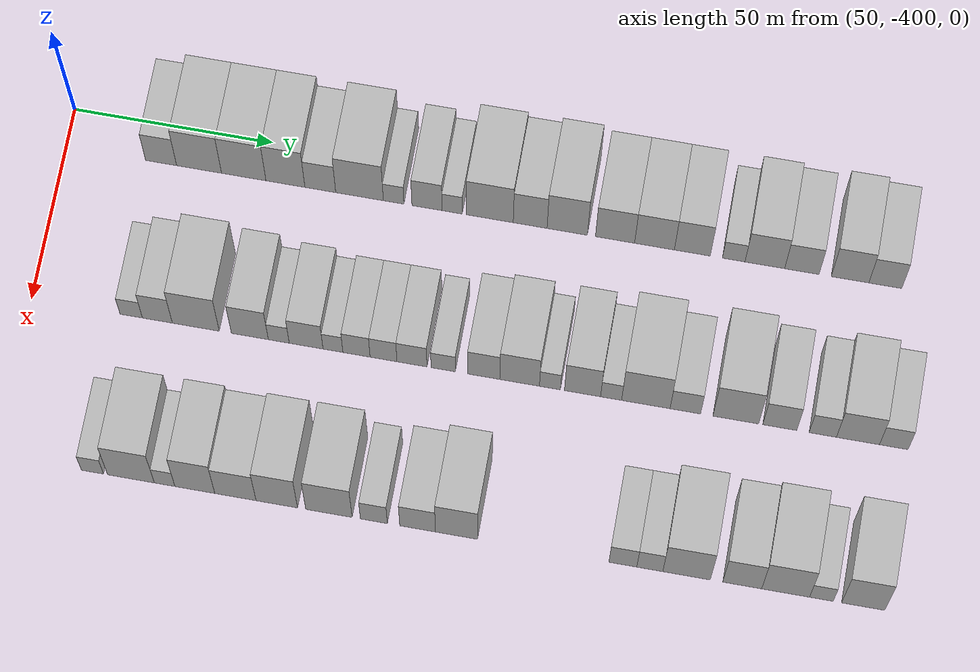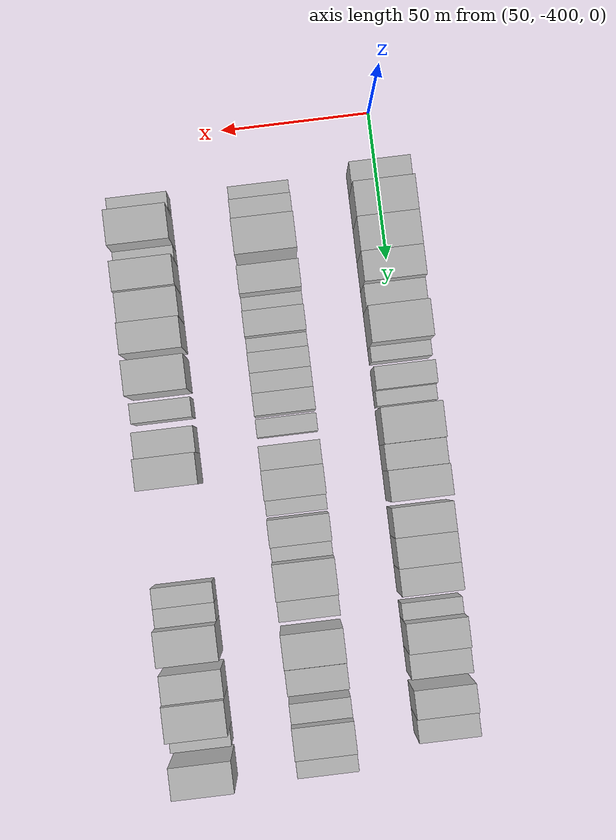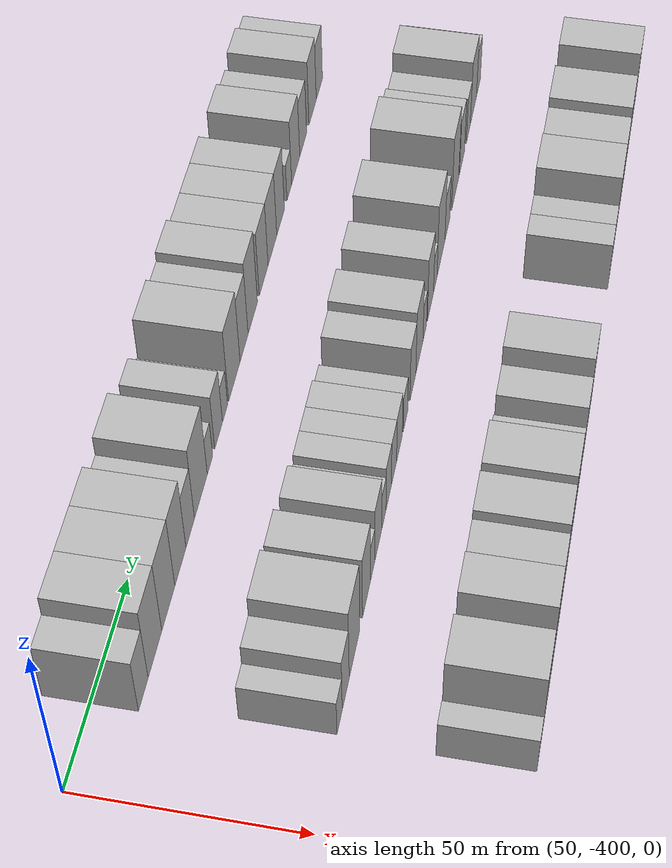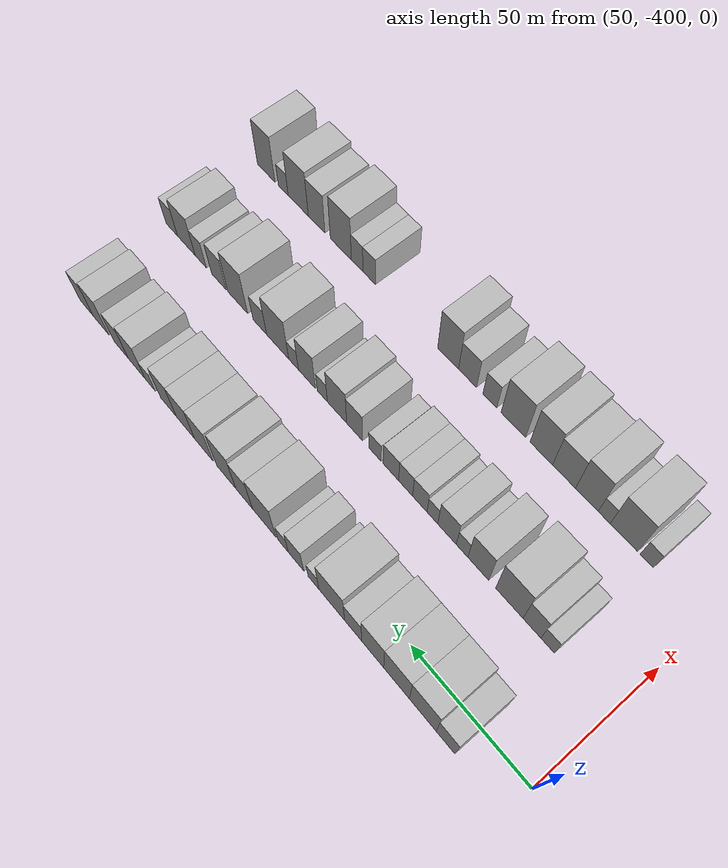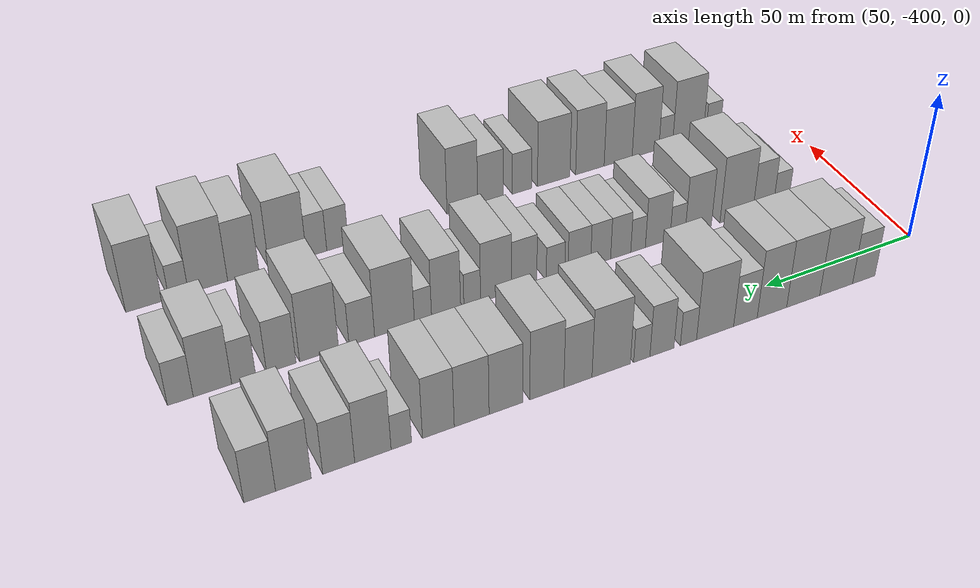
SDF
<sdf version="1.6">
 <world name="default">
  <model name="building_1">
   <static>1</static>
   <pose>50.0000 -376.1027 0 0.000000 0.000000 0.000000</pose>
   <link name="link">
    <pose>0 0 9.00 0 0 0</pose>
    <collision name="collision"><geometry><box><size>20.0000 7.7946 18.0000</size></box></geometry></collision>
    <visual name="visual">
     <cast_shadows>0</cast_shadows>
     <geometry><box><size>20.0000 7.7946 18.0000</size></box></geometry>
     <material>
      <script>
       <uri>model://HANNAS_wall/materials/scripts</uri>
       <uri>model://HANNAS_wall/materials/textures</uri>
       <name>vrc/HANNAS_wall</name>
      </script>
     </material>
    </visual>
   </link>
  </model>
  <model name="building_2">
   <static>1</static>
   <pose>50.0000 -366.5684 0 0.000000 0.000000 0.000000</pose>
   <link name="link">
    <pose>0 0 12.00 0 0 0</pose>
    <collision name="collision"><geometry><box><size>20.0000 11.2741 24.0000</size></box></geometry></collision>
    <visual name="visual">
     <cast_shadows>0</cast_shadows>
     <geometry><box><size>20.0000 11.2741 24.0000</size></box></geometry>
     <material>
      <script>
       <uri>model://HANNAS_wall/materials/scripts</uri>
       <uri>model://HANNAS_wall/materials/textures</uri>
       <name>vrc/HANNAS_wall</name>
      </script>
     </material>
    </visual>
   </link>
  </model>
  <model name="building_3">
   <static>1</static>
   <pose>50.0000 -355.3672 0 0.000000 0.000000 0.000000</pose>
   <link name="link">
    <pose>0 0 12.00 0 0 0</pose>
    <collision name="collision"><geometry><box><size>20.0000 11.1284 24.0000</size></box></geometry></collision>
    <visual name="visual">
     <cast_shadows>0</cast_shadows>
     <geometry><box><size>20.0000 11.1284 24.0000</size></box></geometry>
     <material>
      <script>
       <uri>model://HANNAS_wall/materials/scripts</uri>
       <uri>model://HANNAS_wall/materials/textures</uri>
       <name>vrc/HANNAS_wall</name>
      </script>
     </material>
    </visual>
   </link>
  </model>
  <model name="building_4">
   <static>1</static>
   <pose>50.0000 -344.9227 0 0.000000 0.000000 0.000000</pose>
   <link name="link">
    <pose>0 0 12.00 0 0 0</pose>
    <collision name="collision"><geometry><box><size>20.0000 9.7606 24.0000</size></box></geometry></collision>
    <visual name="visual">
     <cast_shadows>0</cast_shadows>
     <geometry><box><size>20.0000 9.7606 24.0000</size></box></geometry>
     <material>
      <script>
       <uri>model://HANNAS_wall/materials/scripts</uri>
       <uri>model://HANNAS_wall/materials/textures</uri>
       <name>vrc/HANNAS_wall</name>
      </script>
     </material>
    </visual>
   </link>
  </model>
  <model name="building_5">
   <static>1</static>
   <pose>50.0000 -336.1922 0 0.000000 0.000000 0.000000</pose>
   <link name="link">
    <pose>0 0 9.00 0 0 0</pose>
    <collision name="collision"><geometry><box><size>20.0000 7.7004 18.0000</size></box></geometry></collision>
    <visual name="visual">
     <cast_shadows>0</cast_shadows>
     <geometry><box><size>20.0000 7.7004 18.0000</size></box></geometry>
     <material>
      <script>
       <uri>model://HANNAS_wall/materials/scripts</uri>
       <uri>model://HANNAS_wall/materials/textures</uri>
       <name>vrc/HANNAS_wall</name>
      </script>
     </material>
    </visual>
   </link>
  </model>
  <model name="building_6">
   <static>1</static>
   <pose>50.0000 -326.3883 0 0.000000 0.000000 0.000000</pose>
   <link name="link">
    <pose>0 0 12.00 0 0 0</pose>
    <collision name="collision"><geometry><box><size>20.0000 11.9073 24.0000</size></box></geometry></collision>
    <visual name="visual">
     <cast_shadows>0</cast_shadows>
     <geometry><box><size>20.0000 11.9073 24.0000</size></box></geometry>
     <material>
      <script>
       <uri>model://HANNAS_wall/materials/scripts</uri>
       <uri>model://HANNAS_wall/materials/textures</uri>
       <name>vrc/HANNAS_wall</name>
      </script>
     </material>
    </visual>
   </link>
  </model>
  <model name="building_7">
   <static>1</static>
   <pose>50.0000 -317.8739 0 0.000000 0.000000 0.000000</pose>
   <link name="link">
    <pose>0 0 6.00 0 0 0</pose>
    <collision name="collision"><geometry><box><size>20.0000 5.1215 12.0000</size></box></geometry></collision>
    <visual name="visual">
     <cast_shadows>0</cast_shadows>
     <geometry><box><size>20.0000 5.1215 12.0000</size></box></geometry>
     <material>
      <script>
       <uri>model://HANNAS_wall/materials/scripts</uri>
       <uri>model://HANNAS_wall/materials/textures</uri>
       <name>vrc/HANNAS_wall</name>
      </script>
     </material>
    </visual>
   </link>
  </model>
  <model name="building_8">
   <static>1</static>
   <pose>50.0000 -309.5573 0 0.000000 0.000000 0.000000</pose>
   <link name="link">
    <pose>0 0 9.00 0 0 0</pose>
    <collision name="collision"><geometry><box><size>20.0000 7.5115 18.0000</size></box></geometry></collision>
    <visual name="visual">
     <cast_shadows>0</cast_shadows>
     <geometry><box><size>20.0000 7.5115 18.0000</size></box></geometry>
     <material>
      <script>
       <uri>model://HANNAS_wall/materials/scripts</uri>
       <uri>model://HANNAS_wall/materials/textures</uri>
       <name>vrc/HANNAS_wall</name>
      </script>
     </material>
    </visual>
   </link>
  </model>
  <model name="building_9">
   <static>1</static>
   <pose>50.0000 -303.2889 0 0.000000 0.000000 0.000000</pose>
   <link name="link">
    <pose>0 0 6.00 0 0 0</pose>
    <collision name="collision"><geometry><box><size>20.0000 5.0254 12.0000</size></box></geometry></collision>
    <visual name="visual">
     <cast_shadows>0</cast_shadows>
     <geometry><box><size>20.0000 5.0254 12.0000</size></box></geometry>
     <material>
      <script>
       <uri>model://HANNAS_wall/materials/scripts</uri>
       <uri>model://HANNAS_wall/materials/textures</uri>
       <name>vrc/HANNAS_wall</name>
      </script>
     </material>
    </visual>
   </link>
  </model>
  <model name="building_10">
   <static>1</static>
   <pose>50.0000 -293.9382 0 0.000000 0.000000 0.000000</pose>
   <link name="link">
    <pose>0 0 12.00 0 0 0</pose>
    <collision name="collision"><geometry><box><size>20.0000 11.6762 24.0000</size></box></geometry></collision>
    <visual name="visual">
     <cast_shadows>0</cast_shadows>
     <geometry><box><size>20.0000 11.6762 24.0000</size></box></geometry>
     <material>
      <script>
       <uri>model://HANNAS_wall/materials/scripts</uri>
       <uri>model://HANNAS_wall/materials/textures</uri>
       <name>vrc/HANNAS_wall</name>
      </script>
     </material>
    </visual>
   </link>
  </model>
  <model name="building_11">
   <static>1</static>
   <pose>50.0000 -283.8956 0 0.000000 0.000000 0.000000</pose>
   <link name="link">
    <pose>0 0 10.50 0 0 0</pose>
    <collision name="collision"><geometry><box><size>20.0000 8.4090 21.0000</size></box></geometry></collision>
    <visual name="visual">
     <cast_shadows>0</cast_shadows>
     <geometry><box><size>20.0000 8.4090 21.0000</size></box></geometry>
     <material>
      <script>
       <uri>model://HANNAS_wall/materials/scripts</uri>
       <uri>model://HANNAS_wall/materials/textures</uri>
       <name>vrc/HANNAS_wall</name>
      </script>
     </material>
    </visual>
   </link>
  </model>
  <model name="building_12">
   <static>1</static>
   <pose>50.0000 -274.6847 0 0.000000 0.000000 0.000000</pose>
   <link name="link">
    <pose>0 0 12.00 0 0 0</pose>
    <collision name="collision"><geometry><box><size>20.0000 10.0127 24.0000</size></box></geometry></collision>
    <visual name="visual">
     <cast_shadows>0</cast_shadows>
     <geometry><box><size>20.0000 10.0127 24.0000</size></box></geometry>
     <material>
      <script>
       <uri>model://HANNAS_wall/materials/scripts</uri>
       <uri>model://HANNAS_wall/materials/textures</uri>
       <name>vrc/HANNAS_wall</name>
      </script>
     </material>
    </visual>
   </link>
  </model>
  <model name="building_13">
   <static>1</static>
   <pose>50.0000 -262.8253 0 0.000000 0.000000 0.000000</pose>
   <link name="link">
    <pose>0 0 10.50 0 0 0</pose>
    <collision name="collision"><geometry><box><size>20.0000 9.7060 21.0000</size></box></geometry></collision>
    <visual name="visual">
     <cast_shadows>0</cast_shadows>
     <geometry><box><size>20.0000 9.7060 21.0000</size></box></geometry>
     <material>
      <script>
       <uri>model://HANNAS_wall/materials/scripts</uri>
       <uri>model://HANNAS_wall/materials/textures</uri>
       <name>vrc/HANNAS_wall</name>
      </script>
     </material>
    </visual>
   </link>
  </model>
  <model name="building_14">
   <static>1</static>
   <pose>50.0000 -253.0473 0 0.000000 0.000000 0.000000</pose>
   <link name="link">
    <pose>0 0 10.50 0 0 0</pose>
    <collision name="collision"><geometry><box><size>20.0000 9.8501 21.0000</size></box></geometry></collision>
    <visual name="visual">
     <cast_shadows>0</cast_shadows>
     <geometry><box><size>20.0000 9.8501 21.0000</size></box></geometry>
     <material>
      <script>
       <uri>model://HANNAS_wall/materials/scripts</uri>
       <uri>model://HANNAS_wall/materials/textures</uri>
       <name>vrc/HANNAS_wall</name>
      </script>
     </material>
    </visual>
   </link>
  </model>
  <model name="building_15">
   <static>1</static>
   <pose>50.0000 -243.6932 0 0.000000 0.000000 0.000000</pose>
   <link name="link">
    <pose>0 0 10.50 0 0 0</pose>
    <collision name="collision"><geometry><box><size>20.0000 8.8581 21.0000</size></box></geometry></collision>
    <visual name="visual">
     <cast_shadows>0</cast_shadows>
     <geometry><box><size>20.0000 8.8581 21.0000</size></box></geometry>
     <material>
      <script>
       <uri>model://HANNAS_wall/materials/scripts</uri>
       <uri>model://HANNAS_wall/materials/textures</uri>
       <name>vrc/HANNAS_wall</name>
      </script>
     </material>
    </visual>
   </link>
  </model>
  <model name="building_16">
   <static>1</static>
   <pose>50.0000 -233.4718 0 0.000000 0.000000 0.000000</pose>
   <link name="link">
    <pose>0 0 6.00 0 0 0</pose>
    <collision name="collision"><geometry><box><size>20.0000 5.5846 12.0000</size></box></geometry></collision>
    <visual name="visual">
     <cast_shadows>0</cast_shadows>
     <geometry><box><size>20.0000 5.5846 12.0000</size></box></geometry>
     <material>
      <script>
       <uri>model://HANNAS_wall/materials/scripts</uri>
       <uri>model://HANNAS_wall/materials/textures</uri>
       <name>vrc/HANNAS_wall</name>
      </script>
     </material>
    </visual>
   </link>
  </model>
  <model name="building_17">
   <static>1</static>
   <pose>50.0000 -225.7855 0 0.000000 0.000000 0.000000</pose>
   <link name="link">
    <pose>0 0 10.50 0 0 0</pose>
    <collision name="collision"><geometry><box><size>20.0000 9.7880 21.0000</size></box></geometry></collision>
    <visual name="visual">
     <cast_shadows>0</cast_shadows>
     <geometry><box><size>20.0000 9.7880 21.0000</size></box></geometry>
     <material>
      <script>
       <uri>model://HANNAS_wall/materials/scripts</uri>
       <uri>model://HANNAS_wall/materials/textures</uri>
       <name>vrc/HANNAS_wall</name>
      </script>
     </material>
    </visual>
   </link>
  </model>
  <model name="building_18">
   <static>1</static>
   <pose>50.0000 -216.6525 0 0.000000 0.000000 0.000000</pose>
   <link name="link">
    <pose>0 0 9.00 0 0 0</pose>
    <collision name="collision"><geometry><box><size>20.0000 8.4779 18.0000</size></box></geometry></collision>
    <visual name="visual">
     <cast_shadows>0</cast_shadows>
     <geometry><box><size>20.0000 8.4779 18.0000</size></box></geometry>
     <material>
      <script>
       <uri>model://HANNAS_wall/materials/scripts</uri>
       <uri>model://HANNAS_wall/materials/textures</uri>
       <name>vrc/HANNAS_wall</name>
      </script>
     </material>
    </visual>
   </link>
  </model>
  <model name="building_19">
   <static>1</static>
   <pose>50.0000 -204.7900 0 0.000000 0.000000 0.000000</pose>
   <link name="link">
    <pose>0 0 10.50 0 0 0</pose>
    <collision name="collision"><geometry><box><size>20.0000 9.2471 21.0000</size></box></geometry></collision>
    <visual name="visual">
     <cast_shadows>0</cast_shadows>
     <geometry><box><size>20.0000 9.2471 21.0000</size></box></geometry>
     <material>
      <script>
       <uri>model://HANNAS_wall/materials/scripts</uri>
       <uri>model://HANNAS_wall/materials/textures</uri>
       <name>vrc/HANNAS_wall</name>
      </script>
     </material>
    </visual>
   </link>
  </model>
  <model name="building_20">
   <static>1</static>
   <pose>50.0000 -196.1114 0 0.000000 0.000000 0.000000</pose>
   <link name="link">
    <pose>0 0 9.00 0 0 0</pose>
    <collision name="collision"><geometry><box><size>20.0000 8.1101 18.0000</size></box></geometry></collision>
    <visual name="visual">
     <cast_shadows>0</cast_shadows>
     <geometry><box><size>20.0000 8.1101 18.0000</size></box></geometry>
     <material>
      <script>
       <uri>model://HANNAS_wall/materials/scripts</uri>
       <uri>model://HANNAS_wall/materials/textures</uri>
       <name>vrc/HANNAS_wall</name>
      </script>
     </material>
    </visual>
   </link>
  </model>
  <model name="building_80">
   <static>1</static>
   <pose>90.0000 -375.2246 0 0.000000 0.000000 0.000000</pose>
   <link name="link">
    <pose>0 0 6.00 0 0 0</pose>
    <collision name="collision"><geometry><box><size>20.0000 5.5507 12.0000</size></box></geometry></collision>
    <visual name="visual">
     <cast_shadows>0</cast_shadows>
     <geometry><box><size>20.0000 5.5507 12.0000</size></box></geometry>
     <material>
      <script>
       <uri>model://HANNAS_wall/materials/scripts</uri>
       <uri>model://HANNAS_wall/materials/textures</uri>
       <name>vrc/HANNAS_wall</name>
      </script>
     </material>
    </visual>
   </link>
  </model>
  <model name="building_81">
   <static>1</static>
   <pose>90.0000 -368.7449 0 0.000000 0.000000 0.000000</pose>
   <link name="link">
    <pose>0 0 9.00 0 0 0</pose>
    <collision name="collision"><geometry><box><size>20.0000 7.4088 18.0000</size></box></geometry></collision>
    <visual name="visual">
     <cast_shadows>0</cast_shadows>
     <geometry><box><size>20.0000 7.4088 18.0000</size></box></geometry>
     <material>
      <script>
       <uri>model://HANNAS_wall/materials/scripts</uri>
       <uri>model://HANNAS_wall/materials/textures</uri>
       <name>vrc/HANNAS_wall</name>
      </script>
     </material>
    </visual>
   </link>
  </model>
  <model name="building_82">
   <static>1</static>
   <pose>90.0000 -359.2306 0 0.000000 0.000000 0.000000</pose>
   <link name="link">
    <pose>0 0 12.00 0 0 0</pose>
    <collision name="collision"><geometry><box><size>20.0000 11.6198 24.0000</size></box></geometry></collision>
    <visual name="visual">
     <cast_shadows>0</cast_shadows>
     <geometry><box><size>20.0000 11.6198 24.0000</size></box></geometry>
     <material>
      <script>
       <uri>model://HANNAS_wall/materials/scripts</uri>
       <uri>model://HANNAS_wall/materials/textures</uri>
       <name>vrc/HANNAS_wall</name>
      </script>
     </material>
    </visual>
   </link>
  </model>
  <model name="building_83">
   <static>1</static>
   <pose>90.0000 -345.8639 0 0.000000 0.000000 0.000000</pose>
   <link name="link">
    <pose>0 0 10.50 0 0 0</pose>
    <collision name="collision"><geometry><box><size>20.0000 9.1135 21.0000</size></box></geometry></collision>
    <visual name="visual">
     <cast_shadows>0</cast_shadows>
     <geometry><box><size>20.0000 9.1135 21.0000</size></box></geometry>
     <material>
      <script>
       <uri>model://HANNAS_wall/materials/scripts</uri>
       <uri>model://HANNAS_wall/materials/textures</uri>
       <name>vrc/HANNAS_wall</name>
      </script>
     </material>
    </visual>
   </link>
  </model>
  <model name="building_84">
   <static>1</static>
   <pose>90.0000 -338.7263 0 0.000000 0.000000 0.000000</pose>
   <link name="link">
    <pose>0 0 6.00 0 0 0</pose>
    <collision name="collision"><geometry><box><size>20.0000 5.1617 12.0000</size></box></geometry></collision>
    <visual name="visual">
     <cast_shadows>0</cast_shadows>
     <geometry><box><size>20.0000 5.1617 12.0000</size></box></geometry>
     <material>
      <script>
       <uri>model://HANNAS_wall/materials/scripts</uri>
       <uri>model://HANNAS_wall/materials/textures</uri>
       <name>vrc/HANNAS_wall</name>
      </script>
     </material>
    </visual>
   </link>
  </model>
  <model name="building_85">
   <static>1</static>
   <pose>90.0000 -331.9749 0 0.000000 0.000000 0.000000</pose>
   <link name="link">
    <pose>0 0 9.00 0 0 0</pose>
    <collision name="collision"><geometry><box><size>20.0000 8.3412 18.0000</size></box></geometry></collision>
    <visual name="visual">
     <cast_shadows>0</cast_shadows>
     <geometry><box><size>20.0000 8.3412 18.0000</size></box></geometry>
     <material>
      <script>
       <uri>model://HANNAS_wall/materials/scripts</uri>
       <uri>model://HANNAS_wall/materials/textures</uri>
       <name>vrc/HANNAS_wall</name>
      </script>
     </material>
    </visual>
   </link>
  </model>
  <model name="building_86">
   <static>1</static>
   <pose>90.0000 -325.3547 0 0.000000 0.000000 0.000000</pose>
   <link name="link">
    <pose>0 0 6.00 0 0 0</pose>
    <collision name="collision"><geometry><box><size>20.0000 4.8990 12.0000</size></box></geometry></collision>
    <visual name="visual">
     <cast_shadows>0</cast_shadows>
     <geometry><box><size>20.0000 4.8990 12.0000</size></box></geometry>
     <material>
      <script>
       <uri>model://HANNAS_wall/materials/scripts</uri>
       <uri>model://HANNAS_wall/materials/textures</uri>
       <name>vrc/HANNAS_wall</name>
      </script>
     </material>
    </visual>
   </link>
  </model>
  <model name="building_87">
   <static>1</static>
   <pose>90.0000 -319.5586 0 0.000000 0.000000 0.000000</pose>
   <link name="link">
    <pose>0 0 7.50 0 0 0</pose>
    <collision name="collision"><geometry><box><size>20.0000 6.6933 15.0000</size></box></geometry></collision>
    <visual name="visual">
     <cast_shadows>0</cast_shadows>
     <geometry><box><size>20.0000 6.6933 15.0000</size></box></geometry>
     <material>
      <script>
       <uri>model://HANNAS_wall/materials/scripts</uri>
       <uri>model://HANNAS_wall/materials/textures</uri>
       <name>vrc/HANNAS_wall</name>
      </script>
     </material>
    </visual>
   </link>
  </model>
  <model name="building_88">
   <static>1</static>
   <pose>90.0000 -312.9113 0 0.000000 0.000000 0.000000</pose>
   <link name="link">
    <pose>0 0 7.50 0 0 0</pose>
    <collision name="collision"><geometry><box><size>20.0000 6.6013 15.0000</size></box></geometry></collision>
    <visual name="visual">
     <cast_shadows>0</cast_shadows>
     <geometry><box><size>20.0000 6.6013 15.0000</size></box></geometry>
     <material>
      <script>
       <uri>model://HANNAS_wall/materials/scripts</uri>
       <uri>model://HANNAS_wall/materials/textures</uri>
       <name>vrc/HANNAS_wall</name>
      </script>
     </material>
    </visual>
   </link>
  </model>
  <model name="building_89">
   <static>1</static>
   <pose>90.0000 -305.9190 0 0.000000 0.000000 0.000000</pose>
   <link name="link">
    <pose>0 0 7.50 0 0 0</pose>
    <collision name="collision"><geometry><box><size>20.0000 7.3832 15.0000</size></box></geometry></collision>
    <visual name="visual">
     <cast_shadows>0</cast_shadows>
     <geometry><box><size>20.0000 7.3832 15.0000</size></box></geometry>
     <material>
      <script>
       <uri>model://HANNAS_wall/materials/scripts</uri>
       <uri>model://HANNAS_wall/materials/textures</uri>
       <name>vrc/HANNAS_wall</name>
      </script>
     </material>
    </visual>
   </link>
  </model>
  <model name="building_90">
   <static>1</static>
   <pose>90.0000 -298.2472 0 0.000000 0.000000 0.000000</pose>
   <link name="link">
    <pose>0 0 6.00 0 0 0</pose>
    <collision name="collision"><geometry><box><size>20.0000 5.9604 12.0000</size></box></geometry></collision>
    <visual name="visual">
     <cast_shadows>0</cast_shadows>
     <geometry><box><size>20.0000 5.9604 12.0000</size></box></geometry>
     <material>
      <script>
       <uri>model://HANNAS_wall/materials/scripts</uri>
       <uri>model://HANNAS_wall/materials/textures</uri>
       <name>vrc/HANNAS_wall</name>
      </script>
     </material>
    </visual>
   </link>
  </model>
  <model name="building_91">
   <static>1</static>
   <pose>90.0000 -288.3225 0 0.000000 0.000000 0.000000</pose>
   <link name="link">
    <pose>0 0 9.00 0 0 0</pose>
    <collision name="collision"><geometry><box><size>20.0000 7.8890 18.0000</size></box></geometry></collision>
    <visual name="visual">
     <cast_shadows>0</cast_shadows>
     <geometry><box><size>20.0000 7.8890 18.0000</size></box></geometry>
     <material>
      <script>
       <uri>model://HANNAS_wall/materials/scripts</uri>
       <uri>model://HANNAS_wall/materials/textures</uri>
       <name>vrc/HANNAS_wall</name>
      </script>
     </material>
    </visual>
   </link>
  </model>
  <model name="building_92">
   <static>1</static>
   <pose>90.0000 -279.5224 0 0.000000 0.000000 0.000000</pose>
   <link name="link">
    <pose>0 0 10.50 0 0 0</pose>
    <collision name="collision"><geometry><box><size>20.0000 9.7112 21.0000</size></box></geometry></collision>
    <visual name="visual">
     <cast_shadows>0</cast_shadows>
     <geometry><box><size>20.0000 9.7112 21.0000</size></box></geometry>
     <material>
      <script>
       <uri>model://HANNAS_wall/materials/scripts</uri>
       <uri>model://HANNAS_wall/materials/textures</uri>
       <name>vrc/HANNAS_wall</name>
      </script>
     </material>
    </visual>
   </link>
  </model>
  <model name="building_93">
   <static>1</static>
   <pose>90.0000 -272.1001 0 0.000000 0.000000 0.000000</pose>
   <link name="link">
    <pose>0 0 6.00 0 0 0</pose>
    <collision name="collision"><geometry><box><size>20.0000 5.1333 12.0000</size></box></geometry></collision>
    <visual name="visual">
     <cast_shadows>0</cast_shadows>
     <geometry><box><size>20.0000 5.1333 12.0000</size></box></geometry>
     <material>
      <script>
       <uri>model://HANNAS_wall/materials/scripts</uri>
       <uri>model://HANNAS_wall/materials/textures</uri>
       <name>vrc/HANNAS_wall</name>
      </script>
     </material>
    </visual>
   </link>
  </model>
  <model name="building_94">
   <static>1</static>
   <pose>90.0000 -264.1201 0 0.000000 0.000000 0.000000</pose>
   <link name="link">
    <pose>0 0 10.50 0 0 0</pose>
    <collision name="collision"><geometry><box><size>20.0000 8.8268 21.0000</size></box></geometry></collision>
    <visual name="visual">
     <cast_shadows>0</cast_shadows>
     <geometry><box><size>20.0000 8.8268 21.0000</size></box></geometry>
     <material>
      <script>
       <uri>model://HANNAS_wall/materials/scripts</uri>
       <uri>model://HANNAS_wall/materials/textures</uri>
       <name>vrc/HANNAS_wall</name>
      </script>
     </material>
    </visual>
   </link>
  </model>
  <model name="building_95">
   <static>1</static>
   <pose>90.0000 -257.1344 0 0.000000 0.000000 0.000000</pose>
   <link name="link">
    <pose>0 0 6.00 0 0 0</pose>
    <collision name="collision"><geometry><box><size>20.0000 5.1446 12.0000</size></box></geometry></collision>
    <visual name="visual">
     <cast_shadows>0</cast_shadows>
     <geometry><box><size>20.0000 5.1446 12.0000</size></box></geometry>
     <material>
      <script>
       <uri>model://HANNAS_wall/materials/scripts</uri>
       <uri>model://HANNAS_wall/materials/textures</uri>
       <name>vrc/HANNAS_wall</name>
      </script>
     </material>
    </visual>
   </link>
  </model>
  <model name="building_96">
   <static>1</static>
   <pose>90.0000 -248.6528 0 0.000000 0.000000 0.000000</pose>
   <link name="link">
    <pose>0 0 12.00 0 0 0</pose>
    <collision name="collision"><geometry><box><size>20.0000 11.8187 24.0000</size></box></geometry></collision>
    <visual name="visual">
     <cast_shadows>0</cast_shadows>
     <geometry><box><size>20.0000 11.8187 24.0000</size></box></geometry>
     <material>
      <script>
       <uri>model://HANNAS_wall/materials/scripts</uri>
       <uri>model://HANNAS_wall/materials/textures</uri>
       <name>vrc/HANNAS_wall</name>
      </script>
     </material>
    </visual>
   </link>
  </model>
  <model name="building_97">
   <static>1</static>
   <pose>90.0000 -239.0171 0 0.000000 0.000000 0.000000</pose>
   <link name="link">
    <pose>0 0 7.50 0 0 0</pose>
    <collision name="collision"><geometry><box><size>20.0000 7.4526 15.0000</size></box></geometry></collision>
    <visual name="visual">
     <cast_shadows>0</cast_shadows>
     <geometry><box><size>20.0000 7.4526 15.0000</size></box></geometry>
     <material>
      <script>
       <uri>model://HANNAS_wall/materials/scripts</uri>
       <uri>model://HANNAS_wall/materials/textures</uri>
       <name>vrc/HANNAS_wall</name>
      </script>
     </material>
    </visual>
   </link>
  </model>
  <model name="building_98">
   <static>1</static>
   <pose>90.0000 -226.7217 0 0.000000 0.000000 0.000000</pose>
   <link name="link">
    <pose>0 0 12.00 0 0 0</pose>
    <collision name="collision"><geometry><box><size>20.0000 11.1382 24.0000</size></box></geometry></collision>
    <visual name="visual">
     <cast_shadows>0</cast_shadows>
     <geometry><box><size>20.0000 11.1382 24.0000</size></box></geometry>
     <material>
      <script>
       <uri>model://HANNAS_wall/materials/scripts</uri>
       <uri>model://HANNAS_wall/materials/textures</uri>
       <name>vrc/HANNAS_wall</name>
      </script>
     </material>
    </visual>
   </link>
  </model>
  <model name="building_99">
   <static>1</static>
   <pose>90.0000 -216.0159 0 0.000000 0.000000 0.000000</pose>
   <link name="link">
    <pose>0 0 9.00 0 0 0</pose>
    <collision name="collision"><geometry><box><size>20.0000 8.2735 18.0000</size></box></geometry></collision>
    <visual name="visual">
     <cast_shadows>0</cast_shadows>
     <geometry><box><size>20.0000 8.2735 18.0000</size></box></geometry>
     <material>
      <script>
       <uri>model://HANNAS_wall/materials/scripts</uri>
       <uri>model://HANNAS_wall/materials/textures</uri>
       <name>vrc/HANNAS_wall</name>
      </script>
     </material>
    </visual>
   </link>
  </model>
  <model name="building_100">
   <static>1</static>
   <pose>90.0000 -205.5693 0 0.000000 0.000000 0.000000</pose>
   <link name="link">
    <pose>0 0 7.50 0 0 0</pose>
    <collision name="collision"><geometry><box><size>20.0000 6.6197 15.0000</size></box></geometry></collision>
    <visual name="visual">
     <cast_shadows>0</cast_shadows>
     <geometry><box><size>20.0000 6.6197 15.0000</size></box></geometry>
     <material>
      <script>
       <uri>model://HANNAS_wall/materials/scripts</uri>
       <uri>model://HANNAS_wall/materials/textures</uri>
       <name>vrc/HANNAS_wall</name>
      </script>
     </material>
    </visual>
   </link>
  </model>
  <model name="building_101">
   <static>1</static>
   <pose>90.0000 -197.0419 0 0.000000 0.000000 0.000000</pose>
   <link name="link">
    <pose>0 0 10.50 0 0 0</pose>
    <collision name="collision"><geometry><box><size>20.0000 10.4352 21.0000</size></box></geometry></collision>
    <visual name="visual">
     <cast_shadows>0</cast_shadows>
     <geometry><box><size>20.0000 10.4352 21.0000</size></box></geometry>
     <material>
      <script>
       <uri>model://HANNAS_wall/materials/scripts</uri>
       <uri>model://HANNAS_wall/materials/textures</uri>
       <name>vrc/HANNAS_wall</name>
      </script>
     </material>
    </visual>
   </link>
  </model>
  <model name="building_102">
   <static>1</static>
   <pose>90.0000 -188.3653 0 0.000000 0.000000 0.000000</pose>
   <link name="link">
    <pose>0 0 7.50 0 0 0</pose>
    <collision name="collision"><geometry><box><size>20.0000 6.9178 15.0000</size></box></geometry></collision>
    <visual name="visual">
     <cast_shadows>0</cast_shadows>
     <geometry><box><size>20.0000 6.9178 15.0000</size></box></geometry>
     <material>
      <script>
       <uri>model://HANNAS_wall/materials/scripts</uri>
       <uri>model://HANNAS_wall/materials/textures</uri>
       <name>vrc/HANNAS_wall</name>
      </script>
     </material>
    </visual>
   </link>
  </model>
  <model name="building_164">
   <static>1</static>
   <pose>130.0000 -376.2941 0 0.000000 0.000000 0.000000</pose>
   <link name="link">
    <pose>0 0 6.00 0 0 0</pose>
    <collision name="collision"><geometry><box><size>20.0000 5.4118 12.0000</size></box></geometry></collision>
    <visual name="visual">
     <cast_shadows>0</cast_shadows>
     <geometry><box><size>20.0000 5.4118 12.0000</size></box></geometry>
     <material>
      <script>
       <uri>model://HANNAS_wall/materials/scripts</uri>
       <uri>model://HANNAS_wall/materials/textures</uri>
       <name>vrc/HANNAS_wall</name>
      </script>
     </material>
    </visual>
   </link>
  </model>
  <model name="building_165">
   <static>1</static>
   <pose>130.0000 -366.8933 0 0.000000 0.000000 0.000000</pose>
   <link name="link">
    <pose>0 0 12.00 0 0 0</pose>
    <collision name="collision"><geometry><box><size>20.0000 11.3898 24.0000</size></box></geometry></collision>
    <visual name="visual">
     <cast_shadows>0</cast_shadows>
     <geometry><box><size>20.0000 11.3898 24.0000</size></box></geometry>
     <material>
      <script>
       <uri>model://HANNAS_wall/materials/scripts</uri>
       <uri>model://HANNAS_wall/materials/textures</uri>
       <name>vrc/HANNAS_wall</name>
      </script>
     </material>
    </visual>
   </link>
  </model>
  <model name="building_166">
   <static>1</static>
   <pose>130.0000 -358.6763 0 0.000000 0.000000 0.000000</pose>
   <link name="link">
    <pose>0 0 6.00 0 0 0</pose>
    <collision name="collision"><geometry><box><size>20.0000 5.0442 12.0000</size></box></geometry></collision>
    <visual name="visual">
     <cast_shadows>0</cast_shadows>
     <geometry><box><size>20.0000 5.0442 12.0000</size></box></geometry>
     <material>
      <script>
       <uri>model://HANNAS_wall/materials/scripts</uri>
       <uri>model://HANNAS_wall/materials/textures</uri>
       <name>vrc/HANNAS_wall</name>
      </script>
     </material>
    </visual>
   </link>
  </model>
  <model name="building_167">
   <static>1</static>
   <pose>130.0000 -351.2935 0 0.000000 0.000000 0.000000</pose>
   <link name="link">
    <pose>0 0 12.00 0 0 0</pose>
    <collision name="collision"><geometry><box><size>20.0000 9.7214 24.0000</size></box></geometry></collision>
    <visual name="visual">
     <cast_shadows>0</cast_shadows>
     <geometry><box><size>20.0000 9.7214 24.0000</size></box></geometry>
     <material>
      <script>
       <uri>model://HANNAS_wall/materials/scripts</uri>
       <uri>model://HANNAS_wall/materials/textures</uri>
       <name>vrc/HANNAS_wall</name>
      </script>
     </material>
    </visual>
   </link>
  </model>
  <model name="building_168">
   <static>1</static>
   <pose>130.0000 -341.4077 0 0.000000 0.000000 0.000000</pose>
   <link name="link">
    <pose>0 0 10.50 0 0 0</pose>
    <collision name="collision"><geometry><box><size>20.0000 10.0502 21.0000</size></box></geometry></collision>
    <visual name="visual">
     <cast_shadows>0</cast_shadows>
     <geometry><box><size>20.0000 10.0502 21.0000</size></box></geometry>
     <material>
      <script>
       <uri>model://HANNAS_wall/materials/scripts</uri>
       <uri>model://HANNAS_wall/materials/textures</uri>
       <name>vrc/HANNAS_wall</name>
      </script>
     </material>
    </visual>
   </link>
  </model>
  <model name="building_169">
   <static>1</static>
   <pose>130.0000 -331.3375 0 0.000000 0.000000 0.000000</pose>
   <link name="link">
    <pose>0 0 12.00 0 0 0</pose>
    <collision name="collision"><geometry><box><size>20.0000 10.0901 24.0000</size></box></geometry></collision>
    <visual name="visual">
     <cast_shadows>0</cast_shadows>
     <geometry><box><size>20.0000 10.0901 24.0000</size></box></geometry>
     <material>
      <script>
       <uri>model://HANNAS_wall/materials/scripts</uri>
       <uri>model://HANNAS_wall/materials/textures</uri>
       <name>vrc/HANNAS_wall</name>
      </script>
     </material>
    </visual>
   </link>
  </model>
  <model name="building_170">
   <static>1</static>
   <pose>130.0000 -318.6591 0 0.000000 0.000000 0.000000</pose>
   <link name="link">
    <pose>0 0 12.00 0 0 0</pose>
    <collision name="collision"><geometry><box><size>20.0000 11.2667 24.0000</size></box></geometry></collision>
    <visual name="visual">
     <cast_shadows>0</cast_shadows>
     <geometry><box><size>20.0000 11.2667 24.0000</size></box></geometry>
     <material>
      <script>
       <uri>model://HANNAS_wall/materials/scripts</uri>
       <uri>model://HANNAS_wall/materials/textures</uri>
       <name>vrc/HANNAS_wall</name>
      </script>
     </material>
    </visual>
   </link>
  </model>
  <model name="building_171">
   <static>1</static>
   <pose>130.0000 -307.7586 0 0.000000 0.000000 0.000000</pose>
   <link name="link">
    <pose>0 0 7.50 0 0 0</pose>
    <collision name="collision"><geometry><box><size>20.0000 6.5343 15.0000</size></box></geometry></collision>
    <visual name="visual">
     <cast_shadows>0</cast_shadows>
     <geometry><box><size>20.0000 6.5343 15.0000</size></box></geometry>
     <material>
      <script>
       <uri>model://HANNAS_wall/materials/scripts</uri>
       <uri>model://HANNAS_wall/materials/textures</uri>
       <name>vrc/HANNAS_wall</name>
      </script>
     </material>
    </visual>
   </link>
  </model>
  <model name="building_172">
   <static>1</static>
   <pose>130.0000 -297.1646 0 0.000000 0.000000 0.000000</pose>
   <link name="link">
    <pose>0 0 9.00 0 0 0</pose>
    <collision name="collision"><geometry><box><size>20.0000 8.6537 18.0000</size></box></geometry></collision>
    <visual name="visual">
     <cast_shadows>0</cast_shadows>
     <geometry><box><size>20.0000 8.6537 18.0000</size></box></geometry>
     <material>
      <script>
       <uri>model://HANNAS_wall/materials/scripts</uri>
       <uri>model://HANNAS_wall/materials/textures</uri>
       <name>vrc/HANNAS_wall</name>
      </script>
     </material>
    </visual>
   </link>
  </model>
  <model name="building_173">
   <static>1</static>
   <pose>130.0000 -287.7583 0 0.000000 0.000000 0.000000</pose>
   <link name="link">
    <pose>0 0 12.00 0 0 0</pose>
    <collision name="collision"><geometry><box><size>20.0000 10.1590 24.0000</size></box></geometry></collision>
    <visual name="visual">
     <cast_shadows>0</cast_shadows>
     <geometry><box><size>20.0000 10.1590 24.0000</size></box></geometry>
     <material>
      <script>
       <uri>model://HANNAS_wall/materials/scripts</uri>
       <uri>model://HANNAS_wall/materials/textures</uri>
       <name>vrc/HANNAS_wall</name>
      </script>
     </material>
    </visual>
   </link>
  </model>
  <model name="building_174">
   <static>1</static>
   <pose>130.0000 -247.6277 0 0.000000 0.000000 0.000000</pose>
   <link name="link">
    <pose>0 0 7.50 0 0 0</pose>
    <collision name="collision"><geometry><box><size>20.0000 6.7007 15.0000</size></box></geometry></collision>
    <visual name="visual">
     <cast_shadows>0</cast_shadows>
     <geometry><box><size>20.0000 6.7007 15.0000</size></box></geometry>
     <material>
      <script>
       <uri>model://HANNAS_wall/materials/scripts</uri>
       <uri>model://HANNAS_wall/materials/textures</uri>
       <name>vrc/HANNAS_wall</name>
      </script>
     </material>
    </visual>
   </link>
  </model>
  <model name="building_175">
   <static>1</static>
   <pose>130.0000 -241.1526 0 0.000000 0.000000 0.000000</pose>
   <link name="link">
    <pose>0 0 7.50 0 0 0</pose>
    <collision name="collision"><geometry><box><size>20.0000 6.2496 15.0000</size></box></geometry></collision>
    <visual name="visual">
     <cast_shadows>0</cast_shadows>
     <geometry><box><size>20.0000 6.2496 15.0000</size></box></geometry>
     <material>
      <script>
       <uri>model://HANNAS_wall/materials/scripts</uri>
       <uri>model://HANNAS_wall/materials/textures</uri>
       <name>vrc/HANNAS_wall</name>
      </script>
     </material>
    </visual>
   </link>
  </model>
  <model name="building_176">
   <static>1</static>
   <pose>130.0000 -232.3205 0 0.000000 0.000000 0.000000</pose>
   <link name="link">
    <pose>0 0 12.00 0 0 0</pose>
    <collision name="collision"><geometry><box><size>20.0000 11.4146 24.0000</size></box></geometry></collision>
    <visual name="visual">
     <cast_shadows>0</cast_shadows>
     <geometry><box><size>20.0000 11.4146 24.0000</size></box></geometry>
     <material>
      <script>
       <uri>model://HANNAS_wall/materials/scripts</uri>
       <uri>model://HANNAS_wall/materials/textures</uri>
       <name>vrc/HANNAS_wall</name>
      </script>
     </material>
    </visual>
   </link>
  </model>
  <model name="building_177">
   <static>1</static>
   <pose>130.0000 -218.9532 0 0.000000 0.000000 0.000000</pose>
   <link name="link">
    <pose>0 0 10.50 0 0 0</pose>
    <collision name="collision"><geometry><box><size>20.0000 9.3200 21.0000</size></box></geometry></collision>
    <visual name="visual">
     <cast_shadows>0</cast_shadows>
     <geometry><box><size>20.0000 9.3200 21.0000</size></box></geometry>
     <material>
      <script>
       <uri>model://HANNAS_wall/materials/scripts</uri>
       <uri>model://HANNAS_wall/materials/textures</uri>
       <name>vrc/HANNAS_wall</name>
      </script>
     </material>
    </visual>
   </link>
  </model>
  <model name="building_178">
   <static>1</static>
   <pose>130.0000 -208.5608 0 0.000000 0.000000 0.000000</pose>
   <link name="link">
    <pose>0 0 12.00 0 0 0</pose>
    <collision name="collision"><geometry><box><size>20.0000 11.4648 24.0000</size></box></geometry></collision>
    <visual name="visual">
     <cast_shadows>0</cast_shadows>
     <geometry><box><size>20.0000 11.4648 24.0000</size></box></geometry>
     <material>
      <script>
       <uri>model://HANNAS_wall/materials/scripts</uri>
       <uri>model://HANNAS_wall/materials/textures</uri>
       <name>vrc/HANNAS_wall</name>
      </script>
     </material>
    </visual>
   </link>
  </model>
  <model name="building_179">
   <static>1</static>
   <pose>130.0000 -199.9983 0 0.000000 0.000000 0.000000</pose>
   <link name="link">
    <pose>0 0 6.00 0 0 0</pose>
    <collision name="collision"><geometry><box><size>20.0000 5.6602 12.0000</size></box></geometry></collision>
    <visual name="visual">
     <cast_shadows>0</cast_shadows>
     <geometry><box><size>20.0000 5.6602 12.0000</size></box></geometry>
     <material>
      <script>
       <uri>model://HANNAS_wall/materials/scripts</uri>
       <uri>model://HANNAS_wall/materials/textures</uri>
       <name>vrc/HANNAS_wall</name>
      </script>
     </material>
    </visual>
   </link>
  </model>
  <model name="building_180">
   <static>1</static>
   <pose>130.0000 -190.0181 0 0.000000 0.000000 0.000000</pose>
   <link name="link">
    <pose>0 0 12.00 0 0 0</pose>
    <collision name="collision"><geometry><box><size>20.0000 10.3001 24.0000</size></box></geometry></collision>
    <visual name="visual">
     <cast_shadows>0</cast_shadows>
     <geometry><box><size>20.0000 10.3001 24.0000</size></box></geometry>
     <material>
      <script>
       <uri>model://HANNAS_wall/materials/scripts</uri>
       <uri>model://HANNAS_wall/materials/textures</uri>
       <name>vrc/HANNAS_wall</name>
      </script>
     </material>
    </visual>
   </link>
  </model>
 </world>
</sdf>
